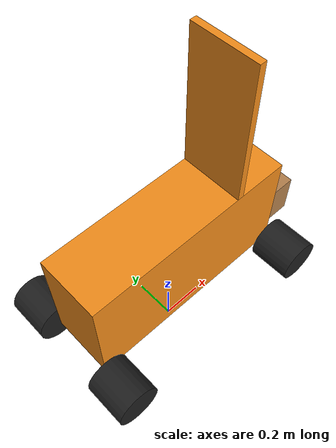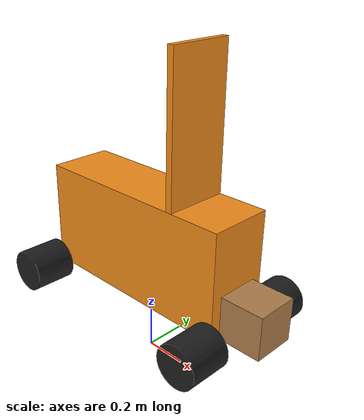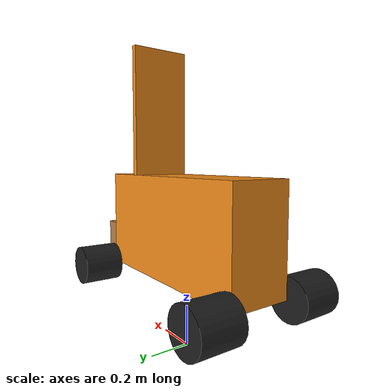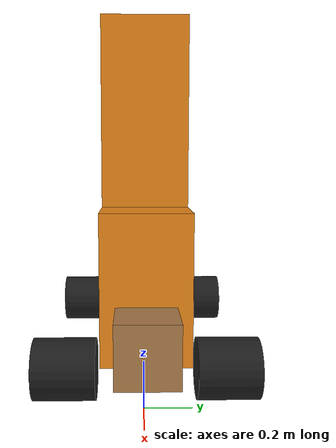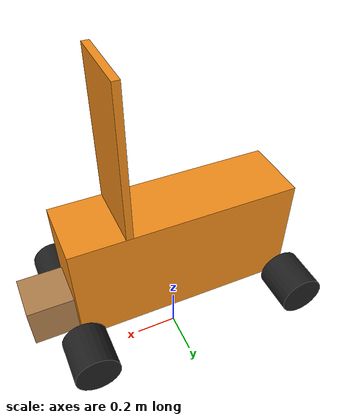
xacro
<?xml version="1.0"?>
<robot
     xmlns:xacro="http://www.ros.org/wiki/xacro" name="sentry">
     <!-- define the base-link origin to lie at floor level, between the drive wheels-->
     <!--main body is a simple box; origin is a center of box-->
    <xacro:property name="bodylen" value="1.0" />
    <xacro:property name="bodywidth" value="0.3" />
    <xacro:property name="bodyheight" value="0.5" />
    <xacro:property name="bodyclearance" value="0.4" />  <!--clearance from bottom of box to ground-->

    <!-- how far the center of the robot should be above the ground -->
    <xacro:property name="zDisp" value="0.6" />

    <xacro:property name="default_mass" value="0.2" />

    <xacro:property name="mastlen" value="${bodywidth/10}" />
    <xacro:property name="mastwidth" value="${bodywidth}" />
    <xacro:property name="mastheight" value="${1.3*bodyheight}" />

    <xacro:property name="lidar_cube_size" value="0.2" />

    <!-- define the wheel dimensions-->
    <xacro:property name="tirediam" value="0.2" />
    <xacro:property name="tirerad" value="${tirediam/2.0}" />
    <xacro:property name="tirewidth" value="0.2" />

    <!-- "track" is the distance between the wheels -->
    <xacro:property name="track" value=".52" />

    <xacro:property name="tinywheelspacing" value=".005" />
    <!-- spacing between wheels on the same side -->
    <xacro:property name="wheelspacing" value="${(bodylen - 4*tirediam - tinywheelspacing)/3}" />

    <xacro:property name="M_PI" value="3.1415926535897931" />

    <!-- left = 1 if its the left wheel -1 if its the right wheel. displacement says how back/forward
    the wheel is from the center-->
    <xacro:macro name="wheel" params="prefix left displacement">
        <link name="${prefix}_wheel">
            <visual>
                <geometry>
                    <cylinder radius="${tirerad}" length="${tirewidth}"/>
                </geometry>
            </visual>
            <collision>
                <geometry>
                    <cylinder radius="${tirerad}" length="${tirewidth}"/>
                </geometry>
            </collision>
            <inertial>
            <!--assign inertial properties to drive wheels -->
            <mass value="${1*default_mass}" />
            <inertia ixx="0.1" ixy="0" ixz="0"
              iyy="0.1" iyz="0"
              izz="0.1" />
        </inertial>
        </link>
        <joint name="${prefix}_wheel_joint" type="continuous">
            <axis xyz="0 0 1"/>
            <parent link="base_link"/>
            <child link="${prefix}_wheel"/>
            <origin xyz="${displacement} ${left*track/2} ${-bodyheight/2 + zDisp}" rpy="0 ${M_PI/2} ${M_PI/2}"/>
            <limit effort="100" velocity="15" />
            <joint_properties damping="0.0" friction="0.0" />
        </joint>
    </xacro:macro>

    <link name="mast">
        <visual>
            <geometry>
                <box size="${mastlen} ${mastwidth} ${mastheight}"/>
            </geometry>
        </visual>
        <collision>
            <geometry>
                <box size="${mastlen} ${mastwidth} ${mastheight}"/>
            </geometry>
        </collision>
        <inertial>
            <mass value="${0.1*default_mass}" />
            <inertia ixx="10" ixy="0" ixz="0"
              iyy="10" iyz="0"
              izz="10" />
        </inertial>
    </link>

    <joint name="masttobase" type="fixed">
        <parent link="base_link"/>
        <child link="mast"/>
        <origin xyz="${bodylen/4} 0 ${mastheight/2 + bodyheight/2 + zDisp}" rpy="0 0 0"/>
    </joint>

    <link name="base_link">
        <visual>
            <geometry>
                <box size="${bodylen} ${bodywidth} ${bodyheight}"/>
            </geometry>
            <origin xyz="0 0 ${zDisp}" rpy="0 0 0"/>
        </visual>
        <collision>
            <geometry>
                <box size="${bodylen} ${bodywidth} ${bodyheight}"/>
            </geometry>
            <origin xyz="0 0 ${zDisp}" rpy="0 0 0"/>
        </collision>
        <inertial>
            <!--assign almost all the mass to the main body box; set m= 100kg; treat I as approx m*r^2 -->
            <mass value="${10*default_mass}" />
            <inertia ixx="10" ixy="0" ixz="0"
              iyy="10" iyz="0"
              izz="10" />
        </inertial>
    </link>

    <!-- add a simulated lidar, including visual, collision and inertial properties, and physics simulation-->
  <link name="lidar_link">
      <collision>
          <geometry>
              <!-- coarse LIDAR model; a simple box -->
              <box size="${lidar_cube_size} ${lidar_cube_size} ${lidar_cube_size}"/>
          </geometry>
      </collision>

      <visual>
          <geometry>
              <box size="${lidar_cube_size} ${lidar_cube_size} ${lidar_cube_size}" />
          </geometry>
          <material name="sick_grey">
              <color rgba="0.7 0.5 0.3 1.0"/>
          </material>
      </visual>

      <inertial>
          <mass value="${0.1*default_mass}" />
          <inertia ixx="0.01" ixy="0" ixz="0" iyy="0.01" iyz="0" izz="0.01" />
      </inertial>
  </link>
  <!--the above displays a box meant to imply Lidar-->

  <joint name="lidar_joint" type="fixed">
      <axis xyz="0 1 0" />
      <origin xyz="${bodylen/2 + lidar_cube_size/2} 0 ${lidar_cube_size/2 - bodyheight/2 + zDisp}" rpy="0 0 0"/>
      <parent link="base_link"/>
      <child link="lidar_link"/>
  </joint>

    <!-- here is the gazebo plug-in to simulate a lidar sensor -->
  <gazebo reference="lidar_link">
    <sensor type="gpu_ray" name="sick_lidar_sensor">
      <pose>0 0 0 0 0 0</pose>
      <visualize>true</visualize>
      <update_rate>40</update_rate>
      <ray>
        <scan>
          <horizontal>
            <samples>181</samples>
            <resolution>1</resolution>
            <min_angle>-1.570796</min_angle>
            <max_angle>1.570796</max_angle>
          </horizontal>
        </scan>
        <range>
          <min>0.10</min>
          <max>80.0</max>
          <resolution>0.01</resolution>
        </range>
        <noise>
          <type>gaussian</type>
          <mean>0.0</mean>
          <stddev>0.01</stddev>
        </noise>
      </ray>
      <plugin name="gazebo_ros_lidar_controller" filename="libgazebo_ros_gpu_laser.so">
        <topicName>/sensor_msgs/LaserScan</topicName>
        <frameName>lidar_link</frameName>
      </plugin>
    </sensor>
  </gazebo>

    <!-- front wheels -->
    <xacro:wheel prefix="left4" left="1" displacement="${(bodylen/2)}"/>
    <xacro:wheel prefix="right4" left="-1" displacement="${(bodylen/2)}"/>

    <!-- rear wheels -->
    <xacro:wheel prefix="left0" left="1" displacement="${-bodylen/2}"/>
    <xacro:wheel prefix="right0" left="-1" displacement="${-bodylen/2}"/>

    <xacro:macro name="wheel_controller_plugin" params="wheelset1 wheelset2">
      <plugin name="${wheelset1}_${wheelset2}_skid_steer_drive_controller" filename="libgazebo_ros_skid_steer_drive.so">
        <updateRate>100.0</updateRate>
        <robotNamespace>/</robotNamespace>
        <leftFrontJoint>left${wheelset1}_wheel_joint</leftFrontJoint>
        <rightFrontJoint>right${wheelset1}_wheel_joint</rightFrontJoint>
        <leftRearJoint>left${wheelset2}_wheel_joint</leftRearJoint>
        <rightRearJoint>right${wheelset2}_wheel_joint</rightRearJoint>
        <wheelSeparation>${track}</wheelSeparation>
        <wheelDiameter>${tirediam}</wheelDiameter>
        <robotBaseFrame>base_link</robotBaseFrame>
        <torque>200</torque>
        <topicName>cmd_vel</topicName>
        <commandTopic>cmd_vel</commandTopic>
        <odometryTopic>odom</odometryTopic>
        <odometryFrame>odom</odometryFrame>
        <broadcastTF>1</broadcastTF>
        <publishWheelTF>true</publishWheelTF>
        <publishWheelJointState>true</publishWheelJointState>
      </plugin>
    </xacro:macro>

    <gazebo>
        <xacro:wheel_controller_plugin wheelset1="4" wheelset2="0"/>
    </gazebo>

    <xacro:macro name="friction_macro" params="wheelnum mu1 mu2">
        <gazebo reference="left${wheelnum}_wheel">
            <mu1>${mu1}</mu1>
            <mu2>${mu2}</mu2>
            <kp>1000000.0</kp>
            <kd>100.0</kd>
            <material >Gazebo/Black </material >
        </gazebo>
        <gazebo reference="right${wheelnum}_wheel">
            <mu1>${mu1}</mu1>
            <mu2>${mu2}</mu2>
            <kp>1000000.0</kp>
            <kd>100.0</kd>
            <material >Gazebo/Black </material >
        </gazebo>
    </xacro:macro>

    <xacro:friction_macro wheelnum="0" mu1="1.4" mu2="1.4"/>
    <xacro:friction_macro wheelnum="4" mu1="1.4" mu2="1.4"/>

    <gazebo reference="base_link">
        <material >Gazebo/Orange </material >
    </gazebo>

    <gazebo reference="mast">
        <material >Gazebo/Orange </material >
    </gazebo>

</robot>
